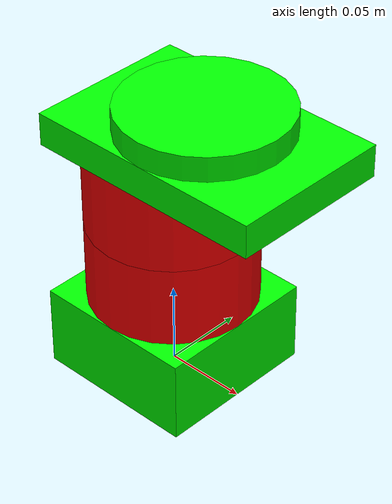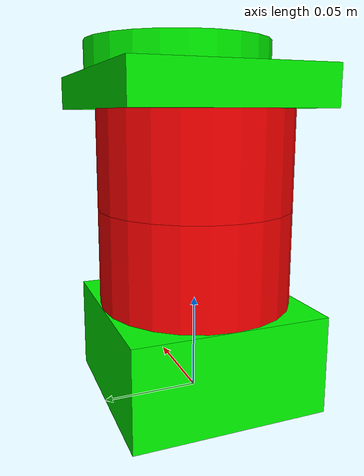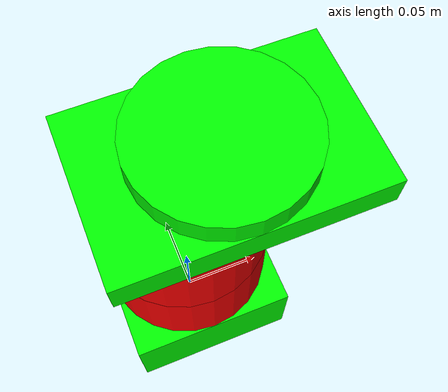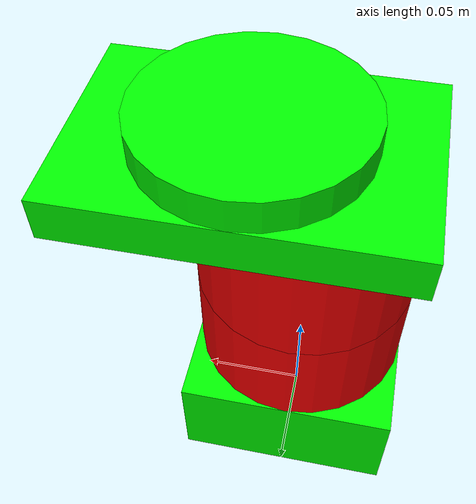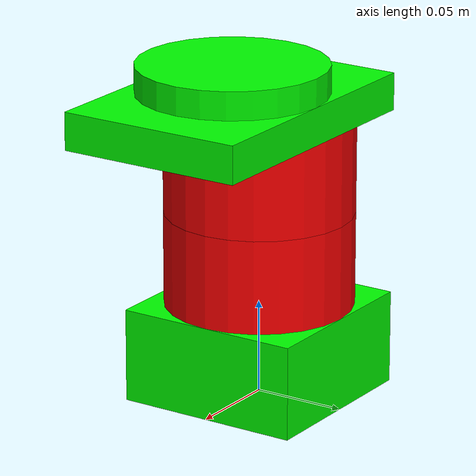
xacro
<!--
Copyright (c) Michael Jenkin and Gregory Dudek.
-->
<?xml version="1.0"?>

<robot name="br_spawn" xmlns:xacro="http://www.ros.org/wiki/xacro">
  <!-- IMPORT PARAMETERS FILE -->
  <xacro:include filename="$(find cpmr_apb)/urdf/blockrobotdiminert.xacro" />
  <!-- NAMESPACE DEFINITION TF_PREFIX -->
  <xacro:arg name="tf_prefix" default="br" />
  <material name="red">
    <color rgba="1 0 0 1"/>
  </material>
  <material name="green">
    <color rgba="0 1 0 1"/>
  </material>
  <!-- GAZEBO MATERIAL DEFINITIONS -->
  <gazebo reference="$(arg tf_prefix)/base_link">
    <material>Gazebo/Green</material>
  </gazebo>
  <gazebo reference="$(arg tf_prefix)/laser_link">
    <material>Gazebo/Red</material>
  </gazebo>
  <gazebo reference="$(arg tf_prefix)/camera_link">
    <material>Gazebo/Green</material>
  </gazebo>
  <gazebo reference="$(arg tf_prefix)/hat_link_brim">
    <material> Gazebo/Blue</material>
  </gazebo>
  <gazebo reference="$(arg tf_prefix)/hat_link_top">
    <material> Gazebo/Blue</material>
  </gazebo>
  <!-- BASE_FOOTPRINT LINK DEFINITIONS -->
  <link name="$(arg tf_prefix)/base_footprint">
  </link>
  <!-- BASE LINK DEFINITION -->
  <link name="$(arg tf_prefix)/base_link">
    <visual>
      <geometry>
        <box size="${b_l} ${b_w} ${b_h}" />
      </geometry>
      <material name="green"/>
    </visual>
    <collision>
      <geometry>
        <box size="${b_l} ${b_w} ${b_h}" />
      </geometry>
    </collision>
    <inertial>
      <mass value="${b_m}" />
      <inertia ixx="${b_ixx}" iyy="${b_iyy}" izz="${b_izz}" ixy="0" ixz="0" iyz="0" />
    </inertial>
  </link>
  <!-- LASER LINK DEFINITION -->
  <link name="$(arg tf_prefix)/laser_link">
    <visual>
      <geometry>
        <cylinder length="${c_h}" radius="${c_r}" />
      </geometry>
      <material name="red"/>
    </visual>
    <collision>
      <geometry>
        <cylinder length="${c_h}" radius="${c_r}" />
      </geometry>
    </collision>
    <inertial>
      <mass value="${c_m}" />
      <inertia ixx="${c_ixx}" iyy="${c_iyy}" izz="${c_izz}" ixy="0" ixz="0" iyz="0" />
    </inertial>
  </link>
  <!-- CAMERA LINK DEFINITION -->
  <link name="$(arg tf_prefix)/camera_link">
    <visual>
      <geometry>
        <cylinder length="${c_h}" radius="${c_r}" />
      </geometry>
      <material name="red"/>
    </visual>
    <collision>
      <geometry>
        <cylinder length="${c_h}" radius="${c_r}" />
      </geometry>
    </collision>
    <inertial>
      <mass value="${c_m}" />
      <origin xyz="0 0 0" rpy="0 0 0"/>
      <inertia ixx="${c_ixx}" iyy="${c_iyy}" izz="${c_izz}" ixy="0" ixz="0" iyz="0" />
    </inertial>
  </link>
  <!-- HAT BRIM LINK DEFINITION -->
  <link name="$(arg tf_prefix)/hat_link_brim">
    <visual>
      <geometry>
        <box size="0.15 0.1 0.02" />
      </geometry>
      <material name="green"/>
    </visual>
    <collision>
      <geometry>
        <box size="0.15 0.1 0.02" />
      </geometry>
    </collision>
    <inertial>
      <mass value="1e-5" />
      <origin xyz="0 0 0" rpy="0 0 0"/>
      <inertia ixx="1e-6" ixy="0" ixz="0" iyy="1e-6" iyz="0" izz="1e-6" />
    </inertial>
  </link>
  <!-- HAT TOP LINK DEFINITION -->
  <link name="$(arg tf_prefix)/hat_link_top">
    <visual>
      <geometry>
        <cylinder length="0.02" radius="0.05" />
      </geometry>
      <material name="green" />
    </visual>
    <collision>
      <geometry>
        <cylinder length="0.02" radius="0.05" />
      </geometry>
    </collision>
    <inertial>
      <mass value="1e-5" />
      <origin xyz="0 0 0" rpy="0 0 0"/>
      <inertia ixx="1e-6" ixy="0" ixz="0" iyy="1e-6" iyz="0" izz="1e-6" />
    </inertial>
  </link>
  <!-- JOINT DEFINITIONS -->
  <joint name="base_joint" type="fixed">
    <origin xyz="0.0 0.0 0.025" rpy="0.0 0.0 0.0" />
    <parent link="$(arg tf_prefix)/base_footprint" />
    <child link="$(arg tf_prefix)/base_link" />
    <axis xyz="0 0 1" />
  </joint>
  <!-- LASER JOINT DEFINITION -->
  <joint name="laser_joint" type="fixed">
    <origin xyz="0.0 0.0 0.05" rpy="0.0 0.0 0.0" />
    <parent link="$(arg tf_prefix)/base_link" />
    <child link="$(arg tf_prefix)/laser_link" />
    <axis xyz="0 0 1" />
  </joint>
  <!-- CAMERA JOINT DEFINITION -->
  <joint name="camera_joint" type="fixed">
    <origin xyz="0.0 0.0 0.05" rpy="0.0 0.0 0.0" />
    <parent link="$(arg tf_prefix)/laser_link" />
    <child link="$(arg tf_prefix)/camera_link" />
    <axis xyz="0 0 1" />
  </joint>
  <!-- HAT BRIM JOINT DEFINITION -->
  <joint name="hat_joint_brim" type="fixed">
    <origin xyz="0.025 0.0 0.035" rpy="0.0 0.0 0.0" />
    <parent link="$(arg tf_prefix)/camera_link" />
    <child link="$(arg tf_prefix)/hat_link_brim" />
    <axis xyz="0 0 1" />
  </joint>
  <!-- HAT TOP JOINT DEFINITION -->
  <joint name="hat_joint_top" type="fixed">
    <origin xyz="0.0 0.0 0.015"/>
    <parent link="$(arg tf_prefix)/hat_link_brim" />
    <child link="$(arg tf_prefix)/hat_link_top" />
    <axis xyz="0 0 1" />
  </joint>
  <!-- LASER GAZEBO PLUG-IN -->
  <gazebo reference="$(arg tf_prefix)/laser_link">
    <static>true</static>
    <sensor type="ray" name="head_hokuyo_sensor">
      <pose>0 0 0 0 0 0</pose>
      <visualize>true</visualize>
      <update_rate>10</update_rate>
      <ray>
        <scan>
          <horizontal>
            <samples>360</samples>
            <resolution>1</resolution>
            <min_angle>-3.1415</min_angle>
            <max_angle>3.1240</max_angle>
          </horizontal>
        </scan>
        <range>
          <min>0.20</min>
          <max>10.0</max>
          <resolution>0.01</resolution>
        </range>
      </ray>
      <plugin name="gazebo_ros_head_hokuyo_controller" filename="libgazebo_ros_laser.so">
        <topicName>scan</topicName>
        <frameName>laser_link</frameName>
      </plugin>
    </sensor>
  </gazebo>
  <!-- GAZEBO CAMERA PLUGIN -->
  <gazebo reference="$(arg tf_prefix)/camera_link">
    <sensor type="camera" name="vislight_cam">
      <update_rate>30.0</update_rate>
      <camera name="head">
        <horizontal_fov>1.3962634</horizontal_fov>
        <image>
          <width>800</width>
           <height>800</height>
           <format>R8G8B8</format>
        </image>
        <clip>
          <near>0.02</near>
          <far>300</far>
        </clip>
        <noise>
          <type>gaussian</type>
          <mean>0.0</mean>
          <stddev>0.007</stddev>
        </noise>
      </camera>
      <plugin name="cam_controller" filename="libgazebo_ros_camera.so">
        <alwaysOn>true</alwaysOn>
        <updateRate>0.0</updateRate>
        <cameraName>vislight_cam</cameraName>
        <imageTopicName>image_raw</imageTopicName>
        <cameraInfoTopicName>camera_info</cameraInfoTopicName>
        <frameName>camera_link</frameName>
        <hackBaseline>0.07</hackBaseline>
        <distortionK1>0.0</distortionK1>
        <distortionK2>0.0</distortionK2>
        <distortionK3>0.0</distortionK3>
        <distortionT1>0.0</distortionT1>
        <distortionT2>0.0</distortionT2>
      </plugin>
    </sensor>
  </gazebo>
  <!-- OBJECT CONTROLLER PLUGIN -->
  <gazebo>
    <plugin name="object_controller" filename="libgazebo_ros_planar_move.so">
      <commandTopic>cmd_vel</commandTopic>
      <odometryTopic>odom</odometryTopic>
      <odometryFrame>br/odom</odometryFrame>
      <odometryRate>20.0</odometryRate>
      <robotBaseFrame>br/base_footprint</robotBaseFrame>
    </plugin>
  </gazebo>
</robot>

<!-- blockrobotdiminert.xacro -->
<robot xmlns:xacro="http://www.ros.org/wiki/xacro">
  <!-- BOX PROPERTIES -->
  <xacro:property name="b_m" value="4.50" />
  <xacro:property name="b_h" value="0.05" />
  <xacro:property name="b_w" value="0.10" />
  <xacro:property name="b_l" value="0.10" />
  <!-- CYLINDER PROPERTIES -->
  <xacro:property name="c_m" value="0.01" />
  <xacro:property name="c_h" value="0.05" />
  <xacro:property name="c_r" value="0.05" />
  <!-- INERTIA DEFINITIONS -->
  <xacro:property name="b_ixx" value="${1/12 * b_m * (b_h * b_h + b_l * b_l)}" />
  <xacro:property name="b_iyy" value="${1/12 * b_m * (b_h * b_h + b_w * b_w)}" />
  <xacro:property name="b_izz" value="${1/12 * b_m * (b_w * b_w + b_l * b_l)}" />
  <xacro:property name="c_ixx" value="${1/12 * c_m * c_h * c_h + 1/4 * c_m * c_r * c_r}" />
  <xacro:property name="c_iyy" value="${1/12 * c_m * c_h * c_h + 1/4 * c_m * c_r * c_r}" />
  <xacro:property name="c_izz" value="${1/2 * c_m * c_r * c_r}" />
</robot>
